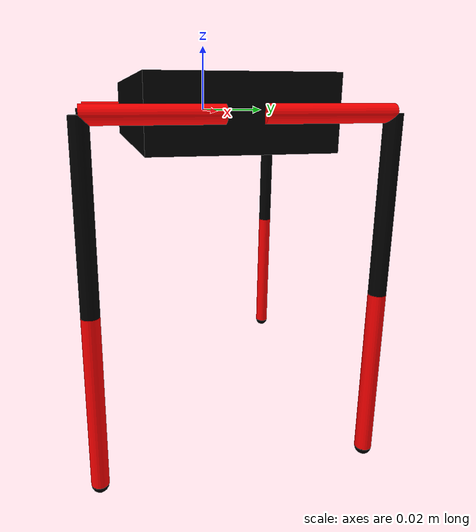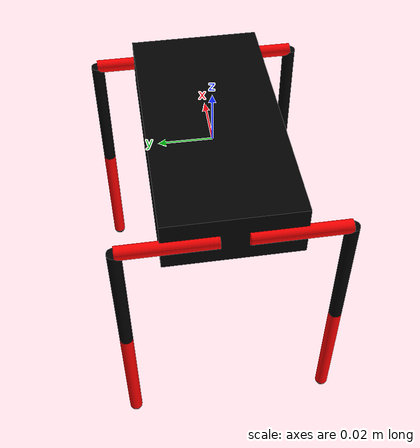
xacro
<?xml version="1.0"?>

<robot xmlns:xacro="http://ros.org/wiki/xacro" name="FYP2020-Swarm-Quadruped">

    <xacro:property name="shoul_len" value="0.035" />
    <xacro:property name="thigh_len" value="0.05" />
    <xacro:property name="shank_len" value="0.05" />
    <xacro:property name="link_radius" value="0.0025"/>
    <xacro:property name="feet_radius" value="0.0025"/>
    <xacro:property name="pi" value="3.1415" />
    <xacro:property name="body_len" value="0.10" />
    <xacro:property name="body_width" value="0.05" />
    <xacro:property name="body_height" value="0.02" />
    <xacro:property name="damping_value" value="10" />
    <xacro:property name="friction_value" value="0.1" />

    <material name="red">
        <color rgba="255 0 0 1"/>
    </material>

    <material name="white">
        <color rgba="0 0 0 1"/>
    </material>

  <!--Main Body-->
    <link name="base_link">
       <visual>
          <origin xyz="0 0 0" rpy="0 0 0"/>
          <geometry>
             <box size="${body_len} ${body_width} ${body_height}" />
          </geometry>
          <material name="white"/>
       </visual>

       <inertial>
         <origin xyz="0 0 0" rpy="0 0 0"/>
         <mass value = "10"/>
         <inertia ixx="1.0" ixy="0.0" ixz="0.0" iyy="1.0" iyz="0.0" izz="1.0" />
       </inertial>

       <collision>
         <origin xyz="0 0 0" rpy="0 0 0"/>
         <geometry>
            <box size="${body_len} ${body_width} ${body_height}" />
         </geometry>
       </collision>
    </link>

  <!--Left Front Leg-->
    <link name="shoulder_link_lf">
       <collision>
         <origin rpy="${pi*0.5} 0 0" xyz="0 ${0.5*1.0*shoul_len} 0"/>
         <geometry>
            <cylinder radius="${link_radius}" length="${shoul_len}"/>
         </geometry>
       </collision>

       <visual>
         <origin rpy="${pi*0.5} 0 0" xyz="0 ${0.5*1.0*shoul_len} 0"/>
         <geometry>
            <cylinder length="${shoul_len}" radius="${link_radius}"/>
         </geometry>
         <material name="red"/>
       </visual>

       <inertial>
         <origin xyz="0 0 0" rpy="0 0 0"/>
         <mass value = "2"/>
         <inertia ixx="1.0" ixy="0.0" ixz="0.0" iyy="1.0" iyz="0.0" izz="1.0" />
       </inertial>
    </link>

    <joint name="shoulder_joint_lf" type="revolute">
      <limit effort="100.0" lower="${-0.5*pi}" upper="${0.5*pi}" velocity="0.5"/>
      <origin xyz="${0.5*body_len*1.0} ${1.0*0.005} 0"/>
      <axis xyz="1 0 0"/>
      <parent link="base_link"/>
      <child link="shoulder_link_lf"/>
      <dynamics damping="${damping_value}" friction="${friction_value}"/>
    </joint>

    <link name="thigh_link_lf">
       <collision>
         <origin rpy="0 0 0" xyz="0 0 ${-0.5*thigh_len}"/>
         <geometry>
            <cylinder radius="${link_radius}" length="${thigh_len}"/>
         </geometry>
       </collision>

       <visual>
         <origin rpy="0 0 0" xyz="0 0 ${-0.5*thigh_len}"/>
         <geometry>
            <cylinder length="${thigh_len}" radius="${link_radius}"/>
         </geometry>
         <material name="white"/>
       </visual>

       <inertial>
         <origin xyz="0 0 0" rpy="0 0 0"/>
         <mass value = "2"/>
         <inertia ixx="1.0" ixy="0.0" ixz="0.0" iyy="1.0" iyz="0.0" izz="1.0" />
       </inertial>
    </link>

    <joint name="elbow_joint_lf" type="revolute">
      <limit effort="100.0" lower="${-0.5*pi}" upper="${0.5*pi}" velocity="0.5"/>
      <origin xyz="0 ${1.0*shoul_len} 0"/>
      <axis xyz="0 1 0"/>
      <parent link="shoulder_link_lf"/>
      <child link="thigh_link_lf"/>
      <dynamics damping="${damping_value}" friction="${friction_value}"/>
    </joint>

    <link name="shank_link_lf">
       <collision>
         <origin rpy="0 0 0" xyz="0 0 ${-0.5*shank_len}"/>
         <geometry>
            <cylinder radius="${link_radius}" length="${shank_len}"/>
         </geometry>
       </collision>

       <visual>
         <origin rpy="0 0 0" xyz="0 0 ${-0.5*shank_len}"/>
         <geometry>
            <cylinder length="${shank_len}" radius="${link_radius}"/>
         </geometry>
         <material name="red"/>
       </visual>

       <inertial>
         <origin xyz="0 0 0" rpy="0 0 0"/>
         <mass value = "2"/>
         <inertia ixx="1.0" ixy="0.0" ixz="0.0" iyy="1.0" iyz="0.0" izz="1.0" />
       </inertial>
    </link>

    <joint name="wrist_joint_lf" type="revolute">
      <limit effort="100.0" lower="${-0.5*pi}" upper="${0.5*pi}" velocity="0.5"/>
      <origin xyz="0 0 ${-thigh_len}"/>
      <axis xyz="0 1 0"/>
      <parent link="thigh_link_lf"/>
      <child link="shank_link_lf"/>
      <dynamics damping="${damping_value}" friction="${friction_value}"/>
    </joint>

    <link name="feet_link_lf">
       <collision>
         <origin xyz="0 0 0" rpy="0 0 0"/>
         <geometry>
            <sphere radius="${feet_radius}"/>
         </geometry>
       </collision>

       <visual>
         <origin rpy="0 0 0" xyz="0 0 0"/>
         <geometry>
            <sphere radius="${feet_radius}"/>
         </geometry>
         <material name="white"/>
       </visual>

       <inertial>
         <origin xyz="0 0 0" rpy="0 0 0"/>
         <mass value = "0.2"/>
         <inertia ixx="1.0" ixy="0.0" ixz="0.0" iyy="1.0" iyz="0.0" izz="1.0" />
       </inertial>
    </link>

    <joint name="ankle_joint_lf" type="fixed">
      <origin xyz="0 0 ${-shank_len}"/>
      <axis xyz="0 1 0"/>
      <parent link="shank_link_lf"/>
      <child link="feet_link_lf"/>
      <dynamics damping="${damping_value}" friction="${friction_value}"/>
    </joint>

  <!--Right Front Leg-->
    <link name="shoulder_link_rf">
       <collision>
         <origin rpy="${pi*0.5} 0 0" xyz="0 ${0.5*-1.0*shoul_len} 0"/>
         <geometry>
            <cylinder radius="${link_radius}" length="${shoul_len}"/>
         </geometry>
       </collision>

       <visual>
         <origin rpy="${pi*0.5} 0 0" xyz="0 ${0.5*-1.0*shoul_len} 0"/>
         <geometry>
            <cylinder length="${shoul_len}" radius="${link_radius}"/>
         </geometry>
         <material name="red"/>
       </visual>

       <inertial>
         <origin xyz="0 0 0" rpy="0 0 0"/>
         <mass value = "2"/>
         <inertia ixx="1.0" ixy="0.0" ixz="0.0" iyy="1.0" iyz="0.0" izz="1.0" />
       </inertial>
    </link>

    <joint name="shoulder_joint_rf" type="revolute">
      <limit effort="100.0" lower="${-0.5*pi}" upper="${0.5*pi}" velocity="0.5"/>
      <origin xyz="${0.5*body_len*1.0} ${-1.0*0.005} 0"/>
      <axis xyz="1 0 0"/>
      <parent link="base_link"/>
      <child link="shoulder_link_rf"/>
      <dynamics damping="${damping_value}" friction="${friction_value}"/>
    </joint>

    <link name="thigh_link_rf">
       <collision>
         <origin rpy="0 0 0" xyz="0 0 ${-0.5*thigh_len}"/>
         <geometry>
            <cylinder radius="${link_radius}" length="${thigh_len}"/>
         </geometry>
       </collision>

       <visual>
         <origin rpy="0 0 0" xyz="0 0 ${-0.5*thigh_len}"/>
         <geometry>
            <cylinder length="${thigh_len}" radius="${link_radius}"/>
         </geometry>
         <material name="white"/>
       </visual>

       <inertial>
         <origin xyz="0 0 0" rpy="0 0 0"/>
         <mass value = "2"/>
         <inertia ixx="1.0" ixy="0.0" ixz="0.0" iyy="1.0" iyz="0.0" izz="1.0" />
       </inertial>
    </link>

    <joint name="elbow_joint_rf" type="revolute">
      <limit effort="100.0" lower="${-0.5*pi}" upper="${0.5*pi}" velocity="0.5"/>
      <origin xyz="0 ${-1.0*shoul_len} 0"/>
      <axis xyz="0 1 0"/>
      <parent link="shoulder_link_rf"/>
      <child link="thigh_link_rf"/>
      <dynamics damping="${damping_value}" friction="${friction_value}"/>
    </joint>

    <link name="shank_link_rf">
       <collision>
         <origin rpy="0 0 0" xyz="0 0 ${-0.5*shank_len}"/>
         <geometry>
            <cylinder radius="${link_radius}" length="${shank_len}"/>
         </geometry>
       </collision>

       <visual>
         <origin rpy="0 0 0" xyz="0 0 ${-0.5*shank_len}"/>
         <geometry>
            <cylinder length="${shank_len}" radius="${link_radius}"/>
         </geometry>
         <material name="red"/>
       </visual>

       <inertial>
         <origin xyz="0 0 0" rpy="0 0 0"/>
         <mass value = "2"/>
         <inertia ixx="1.0" ixy="0.0" ixz="0.0" iyy="1.0" iyz="0.0" izz="1.0" />
       </inertial>
    </link>

    <joint name="wrist_joint_rf" type="revolute">
      <limit effort="100.0" lower="${-0.5*pi}" upper="${0.5*pi}" velocity="0.5"/>
      <origin xyz="0 0 ${-thigh_len}"/>
      <axis xyz="0 1 0"/>
      <parent link="thigh_link_rf"/>
      <child link="shank_link_rf"/>
      <dynamics damping="${damping_value}" friction="${friction_value}"/>
    </joint>

    <link name="feet_link_rf">
       <collision>
         <origin xyz="0 0 0" rpy="0 0 0"/>
         <geometry>
            <sphere radius="${feet_radius}"/>
         </geometry>
       </collision>

       <visual>
         <origin rpy="0 0 0" xyz="0 0 0"/>
         <geometry>
            <sphere radius="${feet_radius}"/>
         </geometry>
         <material name="white"/>
       </visual>

       <inertial>
         <origin xyz="0 0 0" rpy="0 0 0"/>
         <mass value = "0.2"/>
         <inertia ixx="1.0" ixy="0.0" ixz="0.0" iyy="1.0" iyz="0.0" izz="1.0" />
       </inertial>
    </link>

    <joint name="ankle_joint_rf" type="fixed">
      <origin xyz="0 0 ${-shank_len}"/>
      <axis xyz="0 1 0"/>
      <parent link="shank_link_rf"/>
      <child link="feet_link_rf"/>
      <dynamics damping="${damping_value}" friction="${friction_value}"/>
    </joint>

  <!--Left Back Leg-->
    <link name="shoulder_link_lb">
       <collision>
         <origin rpy="${pi*0.5} 0 0" xyz="0 ${0.5*1.0*shoul_len} 0"/>
         <geometry>
            <cylinder radius="${link_radius}" length="${shoul_len}"/>
         </geometry>
       </collision>

       <visual>
         <origin rpy="${pi*0.5} 0 0" xyz="0 ${0.5*1.0*shoul_len} 0"/>
         <geometry>
            <cylinder length="${shoul_len}" radius="${link_radius}"/>
         </geometry>
         <material name="red"/>
       </visual>

       <inertial>
         <origin xyz="0 0 0" rpy="0 0 0"/>
         <mass value = "2"/>
         <inertia ixx="1.0" ixy="0.0" ixz="0.0" iyy="1.0" iyz="0.0" izz="1.0" />
       </inertial>
    </link>

    <joint name="shoulder_joint_lb" type="revolute">
      <limit effort="100.0" lower="${-0.5*pi}" upper="${0.5*pi}" velocity="0.5"/>
      <origin xyz="${0.5*body_len*-1.0} ${1.0*0.005} 0"/>
      <axis xyz="1 0 0"/>
      <parent link="base_link"/>
      <child link="shoulder_link_lb"/>
      <dynamics damping="${damping_value}" friction="${friction_value}"/>
    </joint>

    <link name="thigh_link_lb">
       <collision>
         <origin rpy="0 0 0" xyz="0 0 ${-0.5*thigh_len}"/>
         <geometry>
            <cylinder radius="${link_radius}" length="${thigh_len}"/>
         </geometry>
       </collision>

       <visual>
         <origin rpy="0 0 0" xyz="0 0 ${-0.5*thigh_len}"/>
         <geometry>
            <cylinder length="${thigh_len}" radius="${link_radius}"/>
         </geometry>
         <material name="white"/>
       </visual>

       <inertial>
         <origin xyz="0 0 0" rpy="0 0 0"/>
         <mass value = "2"/>
         <inertia ixx="1.0" ixy="0.0" ixz="0.0" iyy="1.0" iyz="0.0" izz="1.0" />
       </inertial>
    </link>

    <joint name="elbow_joint_lb" type="revolute">
      <limit effort="100.0" lower="${-0.5*pi}" upper="${0.5*pi}" velocity="0.5"/>
      <origin xyz="0 ${1.0*shoul_len} 0"/>
      <axis xyz="0 1 0"/>
      <parent link="shoulder_link_lb"/>
      <child link="thigh_link_lb"/>
      <dynamics damping="${damping_value}" friction="${friction_value}"/>
    </joint>

    <link name="shank_link_lb">
       <collision>
         <origin rpy="0 0 0" xyz="0 0 ${-0.5*shank_len}"/>
         <geometry>
            <cylinder radius="${link_radius}" length="${shank_len}"/>
         </geometry>
       </collision>

       <visual>
         <origin rpy="0 0 0" xyz="0 0 ${-0.5*shank_len}"/>
         <geometry>
            <cylinder length="${shank_len}" radius="${link_radius}"/>
         </geometry>
         <material name="red"/>
       </visual>

       <inertial>
         <origin xyz="0 0 0" rpy="0 0 0"/>
         <mass value = "2"/>
         <inertia ixx="1.0" ixy="0.0" ixz="0.0" iyy="1.0" iyz="0.0" izz="1.0" />
       </inertial>
    </link>

    <joint name="wrist_joint_lb" type="revolute">
      <limit effort="100.0" lower="${-0.5*pi}" upper="${0.5*pi}" velocity="0.5"/>
      <origin xyz="0 0 ${-thigh_len}"/>
      <axis xyz="0 1 0"/>
      <parent link="thigh_link_lb"/>
      <child link="shank_link_lb"/>
      <dynamics damping="${damping_value}" friction="${friction_value}"/>
    </joint>

    <link name="feet_link_lb">
       <collision>
         <origin xyz="0 0 0" rpy="0 0 0"/>
         <geometry>
            <sphere radius="${feet_radius}"/>
         </geometry>
       </collision>

       <visual>
         <origin rpy="0 0 0" xyz="0 0 0"/>
         <geometry>
            <sphere radius="${feet_radius}"/>
         </geometry>
         <material name="white"/>
       </visual>

       <inertial>
         <origin xyz="0 0 0" rpy="0 0 0"/>
         <mass value = "0.2"/>
         <inertia ixx="1.0" ixy="0.0" ixz="0.0" iyy="1.0" iyz="0.0" izz="1.0" />
       </inertial>
    </link>

    <joint name="ankle_joint_lb" type="fixed">
      <origin xyz="0 0 ${-shank_len}"/>
      <axis xyz="0 1 0"/>
      <parent link="shank_link_lb"/>
      <child link="feet_link_lb"/>
      <dynamics damping="${damping_value}" friction="${friction_value}"/>
    </joint>

  <!--Right Back Leg-->
    <link name="shoulder_link_rb">
       <collision>
         <origin rpy="${pi*0.5} 0 0" xyz="0 ${0.5*-1.0*shoul_len} 0"/>
         <geometry>
            <cylinder radius="${link_radius}" length="${shoul_len}"/>
         </geometry>
       </collision>

       <visual>
         <origin rpy="${pi*0.5} 0 0" xyz="0 ${0.5*-1.0*shoul_len} 0"/>
         <geometry>
            <cylinder length="${shoul_len}" radius="${link_radius}"/>
         </geometry>
         <material name="red"/>
       </visual>

       <inertial>
         <origin xyz="0 0 0" rpy="0 0 0"/>
         <mass value = "2"/>
         <inertia ixx="1.0" ixy="0.0" ixz="0.0" iyy="1.0" iyz="0.0" izz="1.0" />
       </inertial>
    </link>

    <joint name="shoulder_joint_rb" type="revolute">
      <limit effort="100.0" lower="${-0.5*pi}" upper="${0.5*pi}" velocity="0.5"/>
      <origin xyz="${0.5*body_len*-1.0} ${-1.0*0.005} 0"/>
      <axis xyz="1 0 0"/>
      <parent link="base_link"/>
      <child link="shoulder_link_rb"/>
      <dynamics damping="${damping_value}" friction="${friction_value}"/>
    </joint>

    <link name="thigh_link_rb">
       <collision>
         <origin rpy="0 0 0" xyz="0 0 ${-0.5*thigh_len}"/>
         <geometry>
            <cylinder radius="${link_radius}" length="${thigh_len}"/>
         </geometry>
       </collision>

       <visual>
         <origin rpy="0 0 0" xyz="0 0 ${-0.5*thigh_len}"/>
         <geometry>
            <cylinder length="${thigh_len}" radius="${link_radius}"/>
         </geometry>
         <material name="white"/>
       </visual>

       <inertial>
         <origin xyz="0 0 0" rpy="0 0 0"/>
         <mass value = "2"/>
         <inertia ixx="1.0" ixy="0.0" ixz="0.0" iyy="1.0" iyz="0.0" izz="1.0" />
       </inertial>
    </link>

    <joint name="elbow_joint_rb" type="revolute">
      <limit effort="100.0" lower="${-0.5*pi}" upper="${0.5*pi}" velocity="0.5"/>
      <origin xyz="0 ${-1.0*shoul_len} 0"/>
      <axis xyz="0 1 0"/>
      <parent link="shoulder_link_rb"/>
      <child link="thigh_link_rb"/>
      <dynamics damping="${damping_value}" friction="${friction_value}"/>
    </joint>

    <link name="shank_link_rb">
       <collision>
         <origin rpy="0 0 0" xyz="0 0 ${-0.5*shank_len}"/>
         <geometry>
            <cylinder radius="${link_radius}" length="${shank_len}"/>
         </geometry>
       </collision>

       <visual>
         <origin rpy="0 0 0" xyz="0 0 ${-0.5*shank_len}"/>
         <geometry>
            <cylinder length="${shank_len}" radius="${link_radius}"/>
         </geometry>
         <material name="red"/>
       </visual>

       <inertial>
         <origin xyz="0 0 0" rpy="0 0 0"/>
         <mass value = "2"/>
         <inertia ixx="1.0" ixy="0.0" ixz="0.0" iyy="1.0" iyz="0.0" izz="1.0" />
       </inertial>
    </link>

    <joint name="wrist_joint_rb" type="revolute">
      <limit effort="100.0" lower="${-0.5*pi}" upper="${0.5*pi}" velocity="0.5"/>
      <origin xyz="0 0 ${-thigh_len}"/>
      <axis xyz="0 1 0"/>
      <parent link="thigh_link_rb"/>
      <child link="shank_link_rb"/>
      <dynamics damping="${damping_value}" friction="${friction_value}"/>
    </joint>

    <link name="feet_link_rb">
       <collision>
         <origin xyz="0 0 0" rpy="0 0 0"/>
         <geometry>
            <sphere radius="${feet_radius}"/>
         </geometry>
       </collision>

       <visual>
         <origin rpy="0 0 0" xyz="0 0 0"/>
         <geometry>
            <sphere radius="${feet_radius}"/>
         </geometry>
         <material name="white"/>
       </visual>

       <inertial>
         <origin xyz="0 0 0" rpy="0 0 0"/>
         <mass value = "0.2"/>
         <inertia ixx="1.0" ixy="0.0" ixz="0.0" iyy="1.0" iyz="0.0" izz="1.0" />
       </inertial>
    </link>

    <joint name="ankle_joint_rb" type="fixed">
      <origin xyz="0 0 ${-shank_len}"/>
      <axis xyz="0 1 0"/>
      <parent link="shank_link_rb"/>
      <child link="feet_link_rb"/>
      <dynamics damping="${damping_value}" friction="${friction_value}"/>
    </joint>

  <!--gazebo plugin-->
    <gazebo>
        <plugin name="gazebo_ros_control" filename="libgazebo_ros_control.so">
           <robotNamespace>/FYP2020-Swarm-Quadruped</robotNamespace>
	   <robotSimType>gazebo_ros_control/DefaultRobotHWSim</robotSimType>
        </plugin>
    </gazebo>

  <!--transmission tags for the links-->
    <transmission name="shoulder_joint_lf_trans">
        <type>transmission_interface/SimpleTransmission</type>
        <joint name="shoulder_joint_lf">
            <hardwareInterface>EffortJointInterface</hardwareInterface>
        </joint>
        <actuator name="motor1">
            <hardwareInterface>EffortJointInterface</hardwareInterface>
            <mechanicalReduction>1</mechanicalReduction>
        </actuator>
    </transmission>

    <transmission name="elbow_joint_lf_trans">
        <type>transmission_interface/SimpleTransmission</type>
        <joint name="elbow_joint_lf">
            <hardwareInterface>EffortJointInterface</hardwareInterface>
        </joint>
        <actuator name="motor2">
            <hardwareInterface>EffortJointInterface</hardwareInterface>
            <mechanicalReduction>1</mechanicalReduction>
        </actuator>
    </transmission>

    <transmission name="wrist_joint_lf_trans">
        <type>transmission_interface/SimpleTransmission</type>
        <joint name="wrist_joint_lf">
            <hardwareInterface>EffortJointInterface</hardwareInterface>
        </joint>
        <actuator name="motor3">
            <hardwareInterface>EffortJointInterface</hardwareInterface>
            <mechanicalReduction>1</mechanicalReduction>
        </actuator>
    </transmission>

    <transmission name="ankle_joint_lf_trans">
        <type>transmission_interface/SimpleTransmission</type>
        <joint name="ankle_joint_lf">
            <hardwareInterface>EffortJointInterface</hardwareInterface>
        </joint>
        <actuator name="motor4">
            <hardwareInterface>EffortJointInterface</hardwareInterface>
            <mechanicalReduction>1</mechanicalReduction>
        </actuator>
    </transmission>

    <transmission name="shoulder_joint_rf_trans">
        <type>transmission_interface/SimpleTransmission</type>
        <joint name="shoulder_joint_rf">
            <hardwareInterface>EffortJointInterface</hardwareInterface>
        </joint>
        <actuator name="motor5">
            <hardwareInterface>EffortJointInterface</hardwareInterface>
            <mechanicalReduction>1</mechanicalReduction>
        </actuator>
    </transmission>

    <transmission name="elbow_joint_rf_trans">
        <type>transmission_interface/SimpleTransmission</type>
        <joint name="elbow_joint_rf">
            <hardwareInterface>EffortJointInterface</hardwareInterface>
        </joint>
        <actuator name="motor6">
            <hardwareInterface>EffortJointInterface</hardwareInterface>
            <mechanicalReduction>1</mechanicalReduction>
        </actuator>
    </transmission>

    <transmission name="wrist_joint_rf_trans">
        <type>transmission_interface/SimpleTransmission</type>
        <joint name="wrist_joint_rf">
            <hardwareInterface>EffortJointInterface</hardwareInterface>
        </joint>
        <actuator name="motor7">
            <hardwareInterface>EffortJointInterface</hardwareInterface>
            <mechanicalReduction>1</mechanicalReduction>
        </actuator>
    </transmission>

    <transmission name="ankle_joint_rf_trans">
        <type>transmission_interface/SimpleTransmission</type>
        <joint name="ankle_joint_rf">
            <hardwareInterface>EffortJointInterface</hardwareInterface>
        </joint>
        <actuator name="motor8">
            <hardwareInterface>EffortJointInterface</hardwareInterface>
            <mechanicalReduction>1</mechanicalReduction>
        </actuator>
    </transmission>

    <transmission name="shoulder_joint_lb_trans">
        <type>transmission_interface/SimpleTransmission</type>
        <joint name="shoulder_joint_lb">
            <hardwareInterface>EffortJointInterface</hardwareInterface>
        </joint>
        <actuator name="motor9">
            <hardwareInterface>EffortJointInterface</hardwareInterface>
            <mechanicalReduction>1</mechanicalReduction>
        </actuator>
    </transmission>

    <transmission name="elbow_joint_lb_trans">
        <type>transmission_interface/SimpleTransmission</type>
        <joint name="elbow_joint_lb">
            <hardwareInterface>EffortJointInterface</hardwareInterface>
        </joint>
        <actuator name="motor10">
            <hardwareInterface>EffortJointInterface</hardwareInterface>
            <mechanicalReduction>1</mechanicalReduction>
        </actuator>
    </transmission>

    <transmission name="wrist_joint_lb_trans">
        <type>transmission_interface/SimpleTransmission</type>
        <joint name="wrist_joint_lb">
            <hardwareInterface>EffortJointInterface</hardwareInterface>
        </joint>
        <actuator name="motor11">
            <hardwareInterface>EffortJointInterface</hardwareInterface>
            <mechanicalReduction>1</mechanicalReduction>
        </actuator>
    </transmission>

    <transmission name="ankle_joint_lb_trans">
        <type>transmission_interface/SimpleTransmission</type>
        <joint name="ankle_joint_lb">
            <hardwareInterface>EffortJointInterface</hardwareInterface>
        </joint>
        <actuator name="motor12">
            <hardwareInterface>EffortJointInterface</hardwareInterface>
            <mechanicalReduction>1</mechanicalReduction>
        </actuator>
    </transmission>

    <transmission name="shoulder_joint_rb_trans">
        <type>transmission_interface/SimpleTransmission</type>
        <joint name="shoulder_joint_rb">
            <hardwareInterface>EffortJointInterface</hardwareInterface>
        </joint>
        <actuator name="motor1">
            <hardwareInterface>EffortJointInterface</hardwareInterface>
            <mechanicalReduction>13</mechanicalReduction>
        </actuator>
    </transmission>

    <transmission name="elbow_joint_rb_trans">
        <type>transmission_interface/SimpleTransmission</type>
        <joint name="elbow_joint_rb">
            <hardwareInterface>EffortJointInterface</hardwareInterface>
        </joint>
        <actuator name="motor14">
            <hardwareInterface>EffortJointInterface</hardwareInterface>
            <mechanicalReduction>1</mechanicalReduction>
        </actuator>
    </transmission>

    <transmission name="wrist_joint_rb_trans">
        <type>transmission_interface/SimpleTransmission</type>
        <joint name="wrist_joint_rb">
            <hardwareInterface>EffortJointInterface</hardwareInterface>
        </joint>
        <actuator name="motor15">
            <hardwareInterface>EffortJointInterface</hardwareInterface>
            <mechanicalReduction>1</mechanicalReduction>
        </actuator>
    </transmission>

    <transmission name="ankle_joint_rb_trans">
        <type>transmission_interface/SimpleTransmission</type>
        <joint name="ankle_joint_rb">
            <hardwareInterface>EffortJointInterface</hardwareInterface>
        </joint>
        <actuator name="motor16">
            <hardwareInterface>EffortJointInterface</hardwareInterface>
            <mechanicalReduction>1</mechanicalReduction>
        </actuator>
    </transmission>
</robot>
